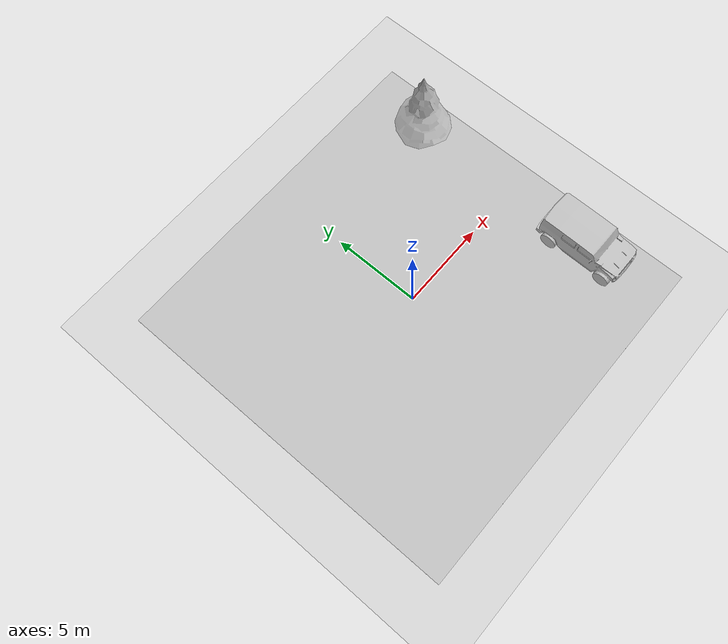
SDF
<sdf version="1.5">
 <world name="default">
  <light type="directional" name="sun">
   <cast_shadows>false</cast_shadows>
   <pose>0 0 100 0 0 0</pose>
   <diffuse>0.8 0.8 0.8 1</diffuse>
   <specular>0.9 0.9 0.9 1</specular>
   <attenuation>
    <range>1000</range>
    <constant>0.9</constant>
    <linear>0.01</linear>
    <quadratic>0.001</quadratic>
   </attenuation>
   <direction>0.2 0.2 -0.9</direction>
  </light>
  <scene><shadows>0</shadows></scene>
  <include><uri>model://ground_plane</uri></include>
  <physics type="ode">
   <gravity>0 0 -9.8066</gravity>
   <ode>
    <solver>
     <type>quick</type>
     <iters>150</iters>
     <sor>1.3</sor>
     <use_dynamic_moi_rescaling>0</use_dynamic_moi_rescaling>
    </solver>
    <constraints>
     <cfm>0.00001</cfm>
     <erp>0.2</erp>
     <contact_max_correcting_vel>1000</contact_max_correcting_vel>
     <contact_surface_layer>0.01</contact_surface_layer>
    </constraints>
   </ode>
   <max_step_size>0.004</max_step_size>
   <real_time_factor>1000.0</real_time_factor>
   <real_time_update_rate>250</real_time_update_rate>
   <magnetic_field>6.0e-6 2.3e-5 -4.2e-5</magnetic_field>
  </physics>
  <model name="prometheus_logo">
   <static>true</static>
   <link name="prometheus_logo1">
    <visual name="visual">
     <cast_shadows>false</cast_shadows>
     <geometry><box><size>20.0 20.0 0.01</size></box></geometry>
     <material>
      <script><uri>model://texture_prometheus/texture.material</uri><name>prometheus_logo2</name></script>
     </material>
    </visual>
   </link>
  </model>
  <model name="suv"><include><uri>model://suv</uri><pose>8 -5 0.01 0 0 -1.57</pose></include></model>
  <model name="pine_tree"><include><uri>model://pine_tree</uri><pose>8 6 0.01 0 0 -1.57</pose></include></model>
 </world>
</sdf>

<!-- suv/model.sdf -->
<sdf version="1.6">
  <model name="suv">
    <static>true</static>
    <link name="link">
      <collision name="collision">
        <pose>0 0 0 0 0 -1.57079632679</pose>
        <geometry>
          <mesh>
            <scale>0.06 0.06 0.06</scale>
            <uri>model://suv/meshes/suv.obj</uri>
          </mesh>
        </geometry>
      </collision>
      <visual name="visual">
        <pose>0 0 0 0 0 -1.57079632679</pose>
        <geometry>
          <mesh>
            <scale>0.06 0.06 0.06</scale>
            <uri>model://suv/meshes/suv.obj</uri>
          </mesh>
        </geometry>
      </visual>
    </link>
  </model>
</sdf>

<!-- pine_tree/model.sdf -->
<sdf version="1.6">
  <model name="pine_tree">
    <static>true</static>
    <link name="link">
      <collision name="collision">
        <geometry>
          <mesh>
            <uri>file://isr-testbed/pine_tree/meshes/pine_tree.dae</uri>
          </mesh>
        </geometry>
      </collision>
      <visual name="branch">
        <geometry>
          <mesh>
            <uri>file://isr-testbed/pine_tree/meshes/pine_tree.dae</uri>
            <submesh>
              <name>Branch</name>
            </submesh>
          </mesh>
        </geometry>
        <material>
          <script>
            <uri>file://isr-testbed/pine_tree/materials/scripts/</uri>
            <uri>file://isr-testbed/pine_tree/materials/textures/</uri>
            <name>PineTree/Branch</name>
          </script>
        </material>
      </visual>
      <visual name="bark">
        <geometry>
          <mesh>
            <uri>file://isr-testbed/pine_tree/meshes/pine_tree.dae</uri>
            <submesh>
              <name>Bark</name>
            </submesh>
          </mesh>
        </geometry>
        <material>
          <script>
            <uri>file://isr-testbed/pine_tree/materials/scripts/</uri>
            <uri>file://isr-testbed/pine_tree/materials/textures/</uri>
            <name>PineTree/Bark</name>
          </script>
        </material>
      </visual>
    </link>
  </model>
</sdf>
